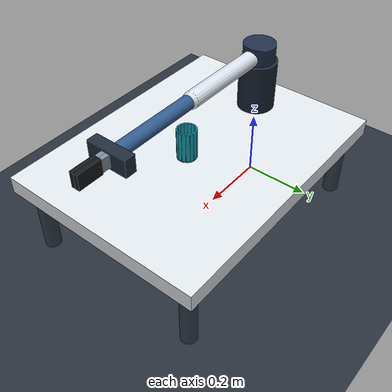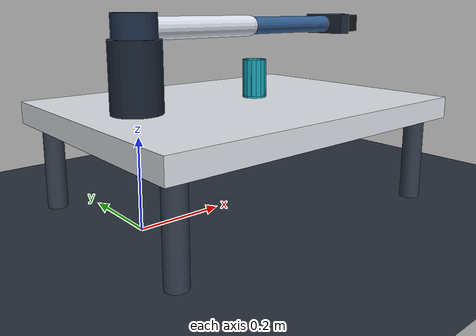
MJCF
<mujoco model="robovision_cup">
<compiler angle="radian" autolimits="true"/>
<option timestep=".002" integrator="implicitfast" cone="elliptic" impratio="5" iterations="50" tolerance="1e-9"/>
<visual><headlight ambient=".32 .32 .32" diffuse=".55 .55 .55" specular=".15 .15 .15"/><global offwidth="640" offheight="480"/><quality shadowsize="2048"/></visual>
<default>
 <pair solref=".012 1" solimp=".95 .99 .001"/>
 <joint damping="2" armature=".01"/>
 <geom friction=".8 .004 .0001" solref=".012 1" solimp=".95 .99 .001" condim="4" density="600"/>
 <position kp="1500" kv="20"/>
</default>
<asset>
 <texture name="studio_sky" type="skybox" builtin="gradient" rgb1=".20 .25 .32" rgb2=".55 .61 .67" width="256" height="1024"/>
 <texture name="floor_grid" type="2d" builtin="checker" width="256" height="256" rgb1=".14 .17 .21" rgb2=".17 .20 .24"/>
 <material name="floor_material" texture="floor_grid" texrepeat="6 6"/>
</asset>
<worldbody>
 <light name="key" pos=".2 -.5 1.3" dir="0 0 -1" ambient=".12 .12 .12" diffuse=".8 .8 .8" castshadow="true"/>
 <light name="fill" pos=".1 .6 1" dir=".2 -.6 -.7" diffuse=".6 .6 .6" castshadow="false"/>
 <geom name="floor" type="plane" size="2 2 .1" material="floor_material"/>
 <geom name="table" type="box" pos=".27 0 .225" size=".40 .30 .025" rgba=".88 .90 .92 1"/>
<geom name="table_leg_0" type="cylinder" pos="-0.08 -0.25 .1" size=".023 .1" rgba=".2 .24 .3 1" contype="0" conaffinity="0"/>
<geom name="table_leg_1" type="cylinder" pos="-0.08 0.25 .1" size=".023 .1" rgba=".2 .24 .3 1" contype="0" conaffinity="0"/>
<geom name="table_leg_2" type="cylinder" pos="0.62 -0.25 .1" size=".023 .1" rgba=".2 .24 .3 1" contype="0" conaffinity="0"/>
<geom name="table_leg_3" type="cylinder" pos="0.62 0.25 .1" size=".023 .1" rgba=".2 .24 .3 1" contype="0" conaffinity="0"/>
 <geom name="mount" contype="0" conaffinity="0" type="cylinder" pos="0 0 .325" size=".055 .075" rgba=".1 .14 .20 1"/>
 <camera name="policy" pos=".45 -.45 .75" xyaxes=".96 .278 0 -.185 .639 .747" fovy="35"/>
 <camera name="demo" pos=".85 -.95 .85" xyaxes=".87 .49 0 -.20 .36 .91" fovy="42"/>
 <body name="yaw_body" pos="0 0 .42" gravcomp="1">
  <joint name="yaw" type="hinge" axis="0 0 1" range="-.8 .8"/>
  <geom type="cylinder" size=".047 .032" rgba=".12 .18 .28 1" mass=".3"/>
  <body name="upper" gravcomp="1">
   <joint name="shoulder" type="hinge" axis="0 1 0" range="-1.95 .45"/>
   <geom name="upper_link" type="capsule" fromto="0 0 0 .30 0 0" size=".024" rgba=".85 .88 .92 1" mass=".6"/>
   <body name="forearm" pos=".30 0 0" gravcomp="1">
    <joint name="elbow" type="hinge" axis="0 1 0" range=".25 2.7"/>
    <geom name="fore_link" type="capsule" fromto="0 0 0 .28 0 0" size=".020" rgba=".19 .36 .56 1" mass=".4"/>
    <body name="wrist" pos=".28 0 0" gravcomp="1">
     <joint name="wrist_pitch" type="hinge" axis="0 1 0" range="-1.4 2.1"/>
     <geom name="palm" type="box" size=".016 .059 .025" rgba=".12 .17 .23 1" mass=".18"/>
     <site name="grasp_center" pos=".075 0 0" size=".002" rgba="1 0 0 0"/>
     <body name="left_finger" pos="0 .006 0" gravcomp="1">
      <joint name="left_jaw" type="slide" axis="0 1 0" range="0 .045" damping="3" armature=".005"/>
      <geom name="left_shaft" type="box" pos=".025 0 0" size=".025 .006 .018" rgba=".5 .55 .61 1" mass=".025"/>
      <geom name="left_pad" type="box" pos=".075 0 0" size=".035 .006 .022" rgba=".08 .09 .10 1" mass=".025"/>
     </body>
     <body name="right_finger" pos="0 -.006 0" gravcomp="1">
      <joint name="right_jaw" type="slide" axis="0 -1 0" range="0 .045" damping="3" armature=".005"/>
      <geom name="right_shaft" type="box" pos=".025 0 0" size=".025 .006 .018" rgba=".5 .55 .61 1" mass=".025"/>
      <geom name="right_pad" type="box" pos=".075 0 0" size=".035 .006 .022" rgba=".08 .09 .10 1" mass=".025"/>
     </body>
    </body>
   </body>
  </body>
 </body>
 <body name="cup" pos=".32 0 .296">
  <freejoint name="cup_free"/>
  <inertial pos="0 0 0" mass=".08" diaginertia=".000081 .000081 .0000544"/>
  <geom name="cup_base" type="cylinder" pos="0 0 -.043" size=".028 .002" rgba=".1 .65 .72 1"/>
 <geom name="cup_wall_0" type="box" pos="0.0260000 0.0000000 .002" euler="0 0 0.0000000" size=".002 .0054 .043" rgba=".1 .65 .72 1"/>
<geom name="cup_wall_1" type="box" pos="0.0240209 0.0099498 .002" euler="0 0 0.3926991" size=".002 .0054 .043" rgba=".1 .65 .72 1"/>
<geom name="cup_wall_2" type="box" pos="0.0183848 0.0183848 .002" euler="0 0 0.7853982" size=".002 .0054 .043" rgba=".1 .65 .72 1"/>
<geom name="cup_wall_3" type="box" pos="0.0099498 0.0240209 .002" euler="0 0 1.1780972" size=".002 .0054 .043" rgba=".1 .65 .72 1"/>
<geom name="cup_wall_4" type="box" pos="0.0000000 0.0260000 .002" euler="0 0 1.5707963" size=".002 .0054 .043" rgba=".1 .65 .72 1"/>
<geom name="cup_wall_5" type="box" pos="-0.0099498 0.0240209 .002" euler="0 0 1.9634954" size=".002 .0054 .043" rgba=".1 .65 .72 1"/>
<geom name="cup_wall_6" type="box" pos="-0.0183848 0.0183848 .002" euler="0 0 2.3561945" size=".002 .0054 .043" rgba=".1 .65 .72 1"/>
<geom name="cup_wall_7" type="box" pos="-0.0240209 0.0099498 .002" euler="0 0 2.7488936" size=".002 .0054 .043" rgba=".1 .65 .72 1"/>
<geom name="cup_wall_8" type="box" pos="-0.0260000 0.0000000 .002" euler="0 0 3.1415927" size=".002 .0054 .043" rgba=".1 .65 .72 1"/>
<geom name="cup_wall_9" type="box" pos="-0.0240209 -0.0099498 .002" euler="0 0 3.5342917" size=".002 .0054 .043" rgba=".1 .65 .72 1"/>
<geom name="cup_wall_10" type="box" pos="-0.0183848 -0.0183848 .002" euler="0 0 3.9269908" size=".002 .0054 .043" rgba=".1 .65 .72 1"/>
<geom name="cup_wall_11" type="box" pos="-0.0099498 -0.0240209 .002" euler="0 0 4.3196899" size=".002 .0054 .043" rgba=".1 .65 .72 1"/>
<geom name="cup_wall_12" type="box" pos="-0.0000000 -0.0260000 .002" euler="0 0 4.7123890" size=".002 .0054 .043" rgba=".1 .65 .72 1"/>
<geom name="cup_wall_13" type="box" pos="0.0099498 -0.0240209 .002" euler="0 0 5.1050881" size=".002 .0054 .043" rgba=".1 .65 .72 1"/>
<geom name="cup_wall_14" type="box" pos="0.0183848 -0.0183848 .002" euler="0 0 5.4977871" size=".002 .0054 .043" rgba=".1 .65 .72 1"/>
<geom name="cup_wall_15" type="box" pos="0.0240209 -0.0099498 .002" euler="0 0 5.8904862" size=".002 .0054 .043" rgba=".1 .65 .72 1"/>
 </body>
</worldbody>
<contact>
 <exclude body1="left_finger" body2="right_finger"/>
 <pair name="left_pad_cup_0" geom1="left_pad" geom2="cup_wall_0" condim="4" friction="1 1 .004 .0001 .0001"/>
<pair name="left_pad_cup_1" geom1="left_pad" geom2="cup_wall_1" condim="4" friction="1 1 .004 .0001 .0001"/>
<pair name="left_pad_cup_2" geom1="left_pad" geom2="cup_wall_2" condim="4" friction="1 1 .004 .0001 .0001"/>
<pair name="left_pad_cup_3" geom1="left_pad" geom2="cup_wall_3" condim="4" friction="1 1 .004 .0001 .0001"/>
<pair name="left_pad_cup_4" geom1="left_pad" geom2="cup_wall_4" condim="4" friction="1 1 .004 .0001 .0001"/>
<pair name="left_pad_cup_5" geom1="left_pad" geom2="cup_wall_5" condim="4" friction="1 1 .004 .0001 .0001"/>
<pair name="left_pad_cup_6" geom1="left_pad" geom2="cup_wall_6" condim="4" friction="1 1 .004 .0001 .0001"/>
<pair name="left_pad_cup_7" geom1="left_pad" geom2="cup_wall_7" condim="4" friction="1 1 .004 .0001 .0001"/>
<pair name="left_pad_cup_8" geom1="left_pad" geom2="cup_wall_8" condim="4" friction="1 1 .004 .0001 .0001"/>
<pair name="left_pad_cup_9" geom1="left_pad" geom2="cup_wall_9" condim="4" friction="1 1 .004 .0001 .0001"/>
<pair name="left_pad_cup_10" geom1="left_pad" geom2="cup_wall_10" condim="4" friction="1 1 .004 .0001 .0001"/>
<pair name="left_pad_cup_11" geom1="left_pad" geom2="cup_wall_11" condim="4" friction="1 1 .004 .0001 .0001"/>
<pair name="left_pad_cup_12" geom1="left_pad" geom2="cup_wall_12" condim="4" friction="1 1 .004 .0001 .0001"/>
<pair name="left_pad_cup_13" geom1="left_pad" geom2="cup_wall_13" condim="4" friction="1 1 .004 .0001 .0001"/>
<pair name="left_pad_cup_14" geom1="left_pad" geom2="cup_wall_14" condim="4" friction="1 1 .004 .0001 .0001"/>
<pair name="left_pad_cup_15" geom1="left_pad" geom2="cup_wall_15" condim="4" friction="1 1 .004 .0001 .0001"/>
<pair name="right_pad_cup_0" geom1="right_pad" geom2="cup_wall_0" condim="4" friction="1 1 .004 .0001 .0001"/>
<pair name="right_pad_cup_1" geom1="right_pad" geom2="cup_wall_1" condim="4" friction="1 1 .004 .0001 .0001"/>
<pair name="right_pad_cup_2" geom1="right_pad" geom2="cup_wall_2" condim="4" friction="1 1 .004 .0001 .0001"/>
<pair name="right_pad_cup_3" geom1="right_pad" geom2="cup_wall_3" condim="4" friction="1 1 .004 .0001 .0001"/>
<pair name="right_pad_cup_4" geom1="right_pad" geom2="cup_wall_4" condim="4" friction="1 1 .004 .0001 .0001"/>
<pair name="right_pad_cup_5" geom1="right_pad" geom2="cup_wall_5" condim="4" friction="1 1 .004 .0001 .0001"/>
<pair name="right_pad_cup_6" geom1="right_pad" geom2="cup_wall_6" condim="4" friction="1 1 .004 .0001 .0001"/>
<pair name="right_pad_cup_7" geom1="right_pad" geom2="cup_wall_7" condim="4" friction="1 1 .004 .0001 .0001"/>
<pair name="right_pad_cup_8" geom1="right_pad" geom2="cup_wall_8" condim="4" friction="1 1 .004 .0001 .0001"/>
<pair name="right_pad_cup_9" geom1="right_pad" geom2="cup_wall_9" condim="4" friction="1 1 .004 .0001 .0001"/>
<pair name="right_pad_cup_10" geom1="right_pad" geom2="cup_wall_10" condim="4" friction="1 1 .004 .0001 .0001"/>
<pair name="right_pad_cup_11" geom1="right_pad" geom2="cup_wall_11" condim="4" friction="1 1 .004 .0001 .0001"/>
<pair name="right_pad_cup_12" geom1="right_pad" geom2="cup_wall_12" condim="4" friction="1 1 .004 .0001 .0001"/>
<pair name="right_pad_cup_13" geom1="right_pad" geom2="cup_wall_13" condim="4" friction="1 1 .004 .0001 .0001"/>
<pair name="right_pad_cup_14" geom1="right_pad" geom2="cup_wall_14" condim="4" friction="1 1 .004 .0001 .0001"/>
<pair name="right_pad_cup_15" geom1="right_pad" geom2="cup_wall_15" condim="4" friction="1 1 .004 .0001 .0001"/>
<pair name="left_pad_cup_base_material" geom1="left_pad" geom2="cup_base" condim="4" friction="1 1 .004 .0001 .0001"/>
<pair name="right_pad_cup_base_material" geom1="right_pad" geom2="cup_base" condim="4" friction="1 1 .004 .0001 .0001"/>
<pair name="left_shaft_cup_base_material" geom1="left_shaft" geom2="cup_base" condim="4" friction="1 1 .004 .0001 .0001"/>
<pair name="left_shaft_cup_wall_0_material" geom1="left_shaft" geom2="cup_wall_0" condim="4" friction="1 1 .004 .0001 .0001"/>
<pair name="left_shaft_cup_wall_1_material" geom1="left_shaft" geom2="cup_wall_1" condim="4" friction="1 1 .004 .0001 .0001"/>
<pair name="left_shaft_cup_wall_2_material" geom1="left_shaft" geom2="cup_wall_2" condim="4" friction="1 1 .004 .0001 .0001"/>
<pair name="left_shaft_cup_wall_3_material" geom1="left_shaft" geom2="cup_wall_3" condim="4" friction="1 1 .004 .0001 .0001"/>
<pair name="left_shaft_cup_wall_4_material" geom1="left_shaft" geom2="cup_wall_4" condim="4" friction="1 1 .004 .0001 .0001"/>
<pair name="left_shaft_cup_wall_5_material" geom1="left_shaft" geom2="cup_wall_5" condim="4" friction="1 1 .004 .0001 .0001"/>
<pair name="left_shaft_cup_wall_6_material" geom1="left_shaft" geom2="cup_wall_6" condim="4" friction="1 1 .004 .0001 .0001"/>
<pair name="left_shaft_cup_wall_7_material" geom1="left_shaft" geom2="cup_wall_7" condim="4" friction="1 1 .004 .0001 .0001"/>
<pair name="left_shaft_cup_wall_8_material" geom1="left_shaft" geom2="cup_wall_8" condim="4" friction="1 1 .004 .0001 .0001"/>
<pair name="left_shaft_cup_wall_9_material" geom1="left_shaft" geom2="cup_wall_9" condim="4" friction="1 1 .004 .0001 .0001"/>
<pair name="left_shaft_cup_wall_10_material" geom1="left_shaft" geom2="cup_wall_10" condim="4" friction="1 1 .004 .0001 .0001"/>
<pair name="left_shaft_cup_wall_11_material" geom1="left_shaft" geom2="cup_wall_11" condim="4" friction="1 1 .004 .0001 .0001"/>
<pair name="left_shaft_cup_wall_12_material" geom1="left_shaft" geom2="cup_wall_12" condim="4" friction="1 1 .004 .0001 .0001"/>
<pair name="left_shaft_cup_wall_13_material" geom1="left_shaft" geom2="cup_wall_13" condim="4" friction="1 1 .004 .0001 .0001"/>
<pair name="left_shaft_cup_wall_14_material" geom1="left_shaft" geom2="cup_wall_14" condim="4" friction="1 1 .004 .0001 .0001"/>
<pair name="left_shaft_cup_wall_15_material" geom1="left_shaft" geom2="cup_wall_15" condim="4" friction="1 1 .004 .0001 .0001"/>
<pair name="right_shaft_cup_base_material" geom1="right_shaft" geom2="cup_base" condim="4" friction="1 1 .004 .0001 .0001"/>
<pair name="right_shaft_cup_wall_0_material" geom1="right_shaft" geom2="cup_wall_0" condim="4" friction="1 1 .004 .0001 .0001"/>
<pair name="right_shaft_cup_wall_1_material" geom1="right_shaft" geom2="cup_wall_1" condim="4" friction="1 1 .004 .0001 .0001"/>
<pair name="right_shaft_cup_wall_2_material" geom1="right_shaft" geom2="cup_wall_2" condim="4" friction="1 1 .004 .0001 .0001"/>
<pair name="right_shaft_cup_wall_3_material" geom1="right_shaft" geom2="cup_wall_3" condim="4" friction="1 1 .004 .0001 .0001"/>
<pair name="right_shaft_cup_wall_4_material" geom1="right_shaft" geom2="cup_wall_4" condim="4" friction="1 1 .004 .0001 .0001"/>
<pair name="right_shaft_cup_wall_5_material" geom1="right_shaft" geom2="cup_wall_5" condim="4" friction="1 1 .004 .0001 .0001"/>
<pair name="right_shaft_cup_wall_6_material" geom1="right_shaft" geom2="cup_wall_6" condim="4" friction="1 1 .004 .0001 .0001"/>
<pair name="right_shaft_cup_wall_7_material" geom1="right_shaft" geom2="cup_wall_7" condim="4" friction="1 1 .004 .0001 .0001"/>
<pair name="right_shaft_cup_wall_8_material" geom1="right_shaft" geom2="cup_wall_8" condim="4" friction="1 1 .004 .0001 .0001"/>
<pair name="right_shaft_cup_wall_9_material" geom1="right_shaft" geom2="cup_wall_9" condim="4" friction="1 1 .004 .0001 .0001"/>
<pair name="right_shaft_cup_wall_10_material" geom1="right_shaft" geom2="cup_wall_10" condim="4" friction="1 1 .004 .0001 .0001"/>
<pair name="right_shaft_cup_wall_11_material" geom1="right_shaft" geom2="cup_wall_11" condim="4" friction="1 1 .004 .0001 .0001"/>
<pair name="right_shaft_cup_wall_12_material" geom1="right_shaft" geom2="cup_wall_12" condim="4" friction="1 1 .004 .0001 .0001"/>
<pair name="right_shaft_cup_wall_13_material" geom1="right_shaft" geom2="cup_wall_13" condim="4" friction="1 1 .004 .0001 .0001"/>
<pair name="right_shaft_cup_wall_14_material" geom1="right_shaft" geom2="cup_wall_14" condim="4" friction="1 1 .004 .0001 .0001"/>
<pair name="right_shaft_cup_wall_15_material" geom1="right_shaft" geom2="cup_wall_15" condim="4" friction="1 1 .004 .0001 .0001"/>
</contact>
<actuator>
 <position name="yaw_act" joint="yaw" ctrlrange="-.8 .8" forcerange="-40 40"/>
 <position name="shoulder_act" joint="shoulder" ctrlrange="-1.95 .45" forcerange="-55 55"/>
 <position name="elbow_act" joint="elbow" ctrlrange=".25 2.7" forcerange="-45 45"/>
 <position name="wrist_act" joint="wrist_pitch" ctrlrange="-1.4 2.1" forcerange="-20 20" kp="750" kv="10"/>
 <position name="left_act" joint="left_jaw" ctrlrange="0 .045" forcerange="-10 10" kp="400" kv="8"/>
 <position name="right_act" joint="right_jaw" ctrlrange="0 .045" forcerange="-10 10" kp="400" kv="8"/>
</actuator>
</mujoco>
